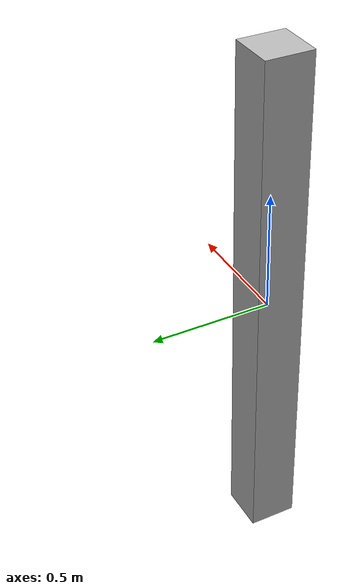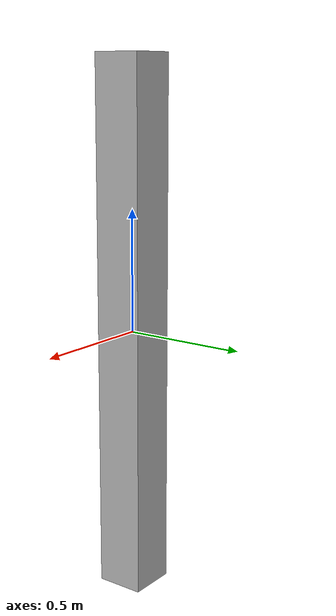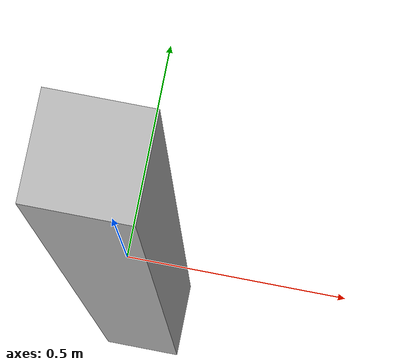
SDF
<?xml version="1.0"?>
<sdf version="1.9">
  <model name="scoped_model">
    <link name="base">
      <inertial>
        <mass>1</mass>
      </inertial>
      <visual name="visual">
        <geometry>
          <box>
            <size>0.2 0.2 2.2</size>
          </box>
        </geometry>
        <material>
          <!--
              Test usage of diffuse map from a separate resource that requires
              package:// URI resolution.
          -->
          <drake:diffuse_map>
            package://process_model_directives_test/model/scoped_model/circle.png
          </drake:diffuse_map>
        </material>
      </visual>
    </link>
    <frame name="frame">
      <pose relative_to="base">1 2 3  0 0 0</pose>
    </frame>
  </model>
</sdf>
